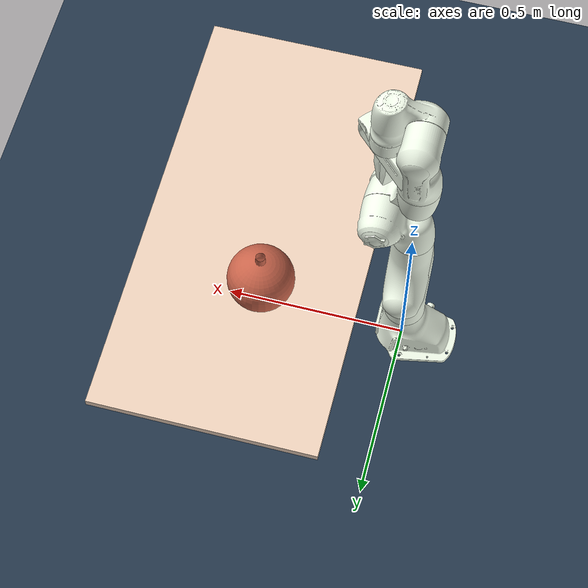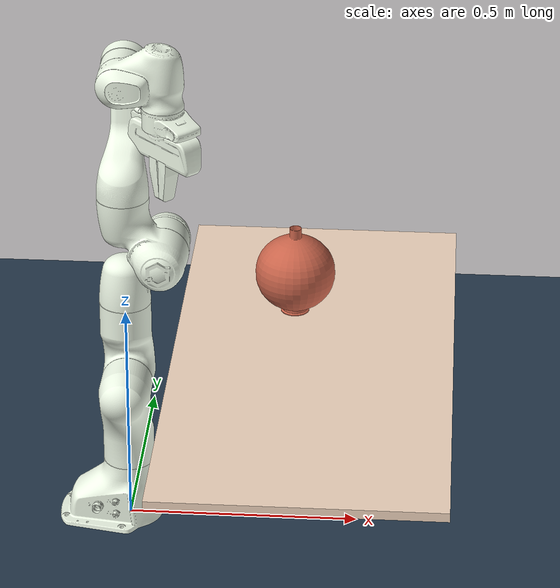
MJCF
<?xml version="1.0" ?>
<mujoco model="mujoco_panda_model">

    <include file="other/simple_scene.xml"/>
    <include file="panda/assets.xml"/>
    <compiler meshdir=""/>

    <default>
        <default class="block_visual">
          <geom contype="0" conaffinity="0"/>
        </default>
        <default class="block_collision">
          <geom contype="1" conaffinity="1" condim="4" solimp="0.99 0.99 0.01" solref="0.01 1"/>
        </default>
        <default class="bottle_visual">
          <geom contype="0" conaffinity="0" type="mesh" mass="0"/>
        </default>
        <default class="bottle_collision">
          <geom contype="1" conaffinity="1" condim="4" solimp="0.99 0.99 0.01" solref="0.01 1" type="mesh" density="1000"/>
        </default>
        <site rgba="1 0 0 .5"/>
    </default>

    <option cone="elliptic" timestep="0.001" integrator="Euler">
        <flag gravity="disable"/>
    </option>

    <worldbody>
        <include file="panda/arm_with_gripper.xml"/>
        <body name="table1" pos="0.4 0.0 0.4">
            <geom name="table1_geom" class="block_collision" size=".3 0.6 0.01" rgba="0.96 0.85 0.76 1" friction="0.2 0.005 0.0001" mass="20" type="box"/>
        </body>
        <body name="bottle" pos="0.35 0.2 0.4125">
            <geom class="bottle_visual" rgba="0.8 0.4 0.3 1" mesh="bottle0_visual"/>
            <geom class="bottle_collision" rgba="0.8 0.4 0.3 1" mesh="bottle0_collision"/>
        </body>
    </worldbody>

    <actuator>
        <include file="panda/actuators/torque_with_gripper.xml"/>
    </actuator>

    <sensor>
        <include file="panda/sensors/ft_sensor.xml" />
    </sensor>

</mujoco>

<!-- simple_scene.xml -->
<mujoco>

    <asset>
        <texture name="texplane" type="2d" builtin="checker" rgb1=".2 .3 .4" rgb2=".1 0.15 0.2"
                width="512" height="512"/>
        <material name="MatGnd" reflectance="0.5" texture="texplane" texrepeat="1 1" texuniform="true"/>
    </asset>

    <worldbody>
        <light pos="0 0 1000" castshadow="false"/>
        <geom name="ground" pos="0 0 0" size="5 5 10" material="MatGnd" type="plane" contype="1" conaffinity="1"/>
    </worldbody>
</mujoco>

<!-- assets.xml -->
<mujoco>

    <compiler angle="radian"/>

    <asset>
        <mesh name="bottle0_collision" file="meshes/collision/bottle.stl"/>
        <mesh name="bottle0_visual" file="meshes/visual/bottle.stl"/>

        <mesh name="link0_collision" file="meshes/collision/link0.stl"/>
        <mesh name="link1_collision" file="meshes/collision/link1.stl"/>
        <mesh name="link2_collision" file="meshes/collision/link2.stl"/>
        <mesh name="link3_collision" file="meshes/collision/link3.stl"/>
        <mesh name="link4_collision" file="meshes/collision/link4.stl"/>
        <mesh name="link5_collision" file="meshes/collision/link5.stl"/>
        <mesh name="link6_collision" file="meshes/collision/link6.stl"/>
        <mesh name="link7_collision" file="meshes/collision/link7.stl"/>
        <mesh name="hand_collision" file="meshes/collision/hand.stl"/>
        <mesh name="finger_collision" file="meshes/collision/finger.stl" scale='1.75 1.0 1.75'/>
        <mesh name="link0_visual" file="meshes/visual/link0.stl"/>
        <mesh name="link1_visual" file="meshes/visual/link1.stl"/>
        <mesh name="link2_visual" file="meshes/visual/link2.stl"/>
        <mesh name="link3_visual" file="meshes/visual/link3.stl"/>
        <mesh name="link4_visual" file="meshes/visual/link4.stl"/>
        <mesh name="link5_visual" file="meshes/visual/link5.stl"/>
        <mesh name="link6_visual" file="meshes/visual/link6.stl"/>
        <mesh name="link7_visual" file="meshes/visual/link7.stl"/>
        <mesh name="hand_visual" file="meshes/visual/hand.stl"/>
        <mesh name="finger_visual" file="meshes/collision/finger.stl" scale='1.75 1.0 1.75'/>
    </asset>
    <default>
        <default class="panda">

            <joint pos="0 0 0" axis="0 0 1" limited="true" damping="100"/>
            <position forcelimited="true" ctrllimited="true" user="1002 40 2001 -0.005 0.005"/>
            <default class="visual">
                <geom contype="0" conaffinity="0" group="0" type="mesh" rgba=".95 .99 .92 1" mass="0"/>
            </default>

            <default class="collision">
                <geom contype="1" conaffinity="1" group="3" type="mesh" rgba=".5 .6 .7 1"/>
            </default>
             <default class="panda_finger">
                <joint damping="100" armature='5'/>
            </default>
        </default>
    </default>
</mujoco>

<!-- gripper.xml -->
<mujoco>
<body name="panda_hand" pos="0 0 0.107" euler="0 0 -0.785">
    <inertial pos="0 0 0" euler="0 0 0" mass="0.68" diaginertia="0.1 0.1 0.1" />
    <geom class="visual" mesh="hand_visual"/>
    <geom class="collision" mesh="hand_collision"/>

    <body name="panda_leftfinger" pos="0 0 0.0584" quat="1 0 0 0">
        <joint name="panda_finger_joint1"  axis="0 1 0" type="slide" range="0 0.04" damping="100" armature='5' limited="true"/>
        <geom class="visual" mesh="finger_visual"/>
        <geom class="collision" mesh="finger_collision" mass="0.01"/>
    </body>

    <body name="panda_rightfinger" pos="0 0 0.0584" quat="1 0 0 0">
        <joint name="panda_finger_joint2" axis="0 -1 0" type="slide" range="0 0.04" damping="100" armature='5' limited="true"/>
        <geom quat="0 0 0 1" class="visual" mesh="finger_visual"/>
        <geom quat="0 0 0 1" class="collision" mesh="finger_collision" mass="0.01"/>
    </body>
</body>
</mujoco>

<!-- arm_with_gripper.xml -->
<mujoco>

    <body name="panda_link0" childclass="panda" >
        <inertial pos="0 0 0" quat="1 0 0 0" mass="3.06" diaginertia="0.3 0.3 0.3" />
        <geom class="visual" mesh="link0_visual"/>

        <body name="panda_link1" pos="0 0 0.333">
            <inertial pos="3.875e-03 2.081e-03 -0.1750" mass="4.970684" fullinertia="7.0337e-01 7.0661e-01 9.1170e-03 -1.3900e-04 6.7720e-03 1.9169e-02" />
            <joint name="panda_joint1" range="-2.8973 2.8973" frictionloss="5"/>
            <geom class="visual" mesh="link1_visual"/>
            <geom class="collision" mesh="link1_collision"/>

            <body name="panda_link2" pos="0 0 0" quat="0.707107 -0.707107 0 0">
                <inertial pos="-3.141e-03 -2.872e-02 3.495e-03" mass="0.646926" fullinertia="7.9620e-03 2.8110e-02 2.5995e-02 -3.9250e-03 1.0254e-02 7.0400e-04" />
                <joint name="panda_joint2" range="-1.7628 1.7628" frictionloss="2"/>
                <geom class="visual" mesh="link2_visual"/>
                <geom class="collision" mesh="link2_collision"/>

                <body name="panda_link3" pos="0 -0.316 0" quat="0.707107 0.707107 0 0">
                    <inertial pos="2.7518e-02 3.9252e-02 -6.6502e-02" mass="3.228604" fullinertia="3.7242e-02 3.6155e-02 1.0830e-02 -4.7610e-03 -1.1396e-02 -1.2805e-02" />
                    <joint name="panda_joint3" range="-2.8973 2.8973" frictionloss="2"/>
                    <geom class="visual" mesh="link3_visual"/>
                    <geom class="collision" mesh="link3_collision"/>

                    <body name="panda_link4" pos="0.0825 0 0" quat="0.707107 0.707107 0 0">
                        <inertial pos="-5.317e-02 1.04419e-01 2.7454e-02" mass="3.587895" fullinertia="2.5853e-02 1.9552e-02 2.8323e-02 7.7960e-03 -1.3320e-03 8.6410e-03" />
                        <joint name="panda_joint4" range="-3.0718 -0.4" frictionloss="0.5"/>
                        <geom class="visual" mesh="link4_visual"/>
                        <geom class="collision" mesh="link4_collision"/>

                        <body name="panda_link5" pos="-0.0825 0.384 0" quat="0.707107 -0.707107 0 0">
                            <inertial pos="-1.1953e-02 4.1065e-02 -3.8437e-02" mass="1.225946" fullinertia="3.5549e-02 2.9474e-02 8.6270e-03 -2.1170e-03 -4.0370e-03 2.2900e-04" />
                            <joint name="panda_joint5" range="-2.8973 2.8973" frictionloss="1"/>
                            <geom class="visual" mesh="link5_visual"/>
                            <geom class="collision" mesh="link5_collision"/>

                            <body name="panda_link6" pos="0 0 0" quat="0.707107 0.707107 0 0">
                                <inertial pos="6.0149e-02 -1.4117e-02 -1.0517e-02" mass="1.666555" fullinertia="1.9640e-03 4.3540e-03 5.4330e-03 1.0900e-04 -1.1580e-03 3.4100e-04" />
                                <joint name="panda_joint6" range="-1.6573 2.1127" frictionloss="0.5"/>
                                <geom class="visual" mesh="link6_visual"/>
                                <geom class="collision" mesh="link6_collision"/>

                                <body name="panda_link7" pos="0.088 0 0" euler='1.57 0 0.'>
                                    <inertial pos="1.0517e-02 -4.252e-03 6.1597e-02" mass="7.35522e-01" fullinertia="1.2516e-02 1.0027e-02 4.8150e-03 -4.2800e-04 -1.1960e-03 -7.4100e-04" />
                                    <joint name="panda_joint7" range="-2.8973 2.8973" frictionloss="0.5"/>
                                    <geom class="visual" mesh="link7_visual"/>
                                    <geom class="collision" mesh="link7_collision"/>

                                    <site name='ee_site' pos='0 0 0.107' size="0.005 0.005 0.005" euler='0 0 -1.57'/>
                                    <include file="panda/gripper.xml"/>
                                </body>
                            </body>
                        </body>
                    </body>
                </body>
            </body>
        </body>
    </body>
</mujoco>

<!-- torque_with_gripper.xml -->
<mujoco>
    <motor name="arm_direct_actuator_1" joint="panda_joint1" class="panda" forcerange="-87 87" ctrlrange="-87 87"/>
    <motor name="arm_direct_actuator_2" joint="panda_joint2" class="panda" forcerange="-87 87" ctrlrange="-87 87"/>
    <motor name="arm_direct_actuator_3" joint="panda_joint3" class="panda" forcerange="-87 87" ctrlrange="-87 87"/>
    <motor name="arm_direct_actuator_4" joint="panda_joint4" class="panda" forcerange="-87 87" ctrlrange="-87 87"/>
    <motor name="arm_direct_actuator_5" joint="panda_joint5" class="panda" forcerange="-12 12" ctrlrange="-12 12"/>
    <motor name="arm_direct_actuator_6" joint="panda_joint6" class="panda" forcerange="-12 12" ctrlrange="-12 12"/>
    <motor name="arm_direct_actuator_7" joint="panda_joint7" class="panda" forcerange="-12 12" ctrlrange="-12 12"/>
    <motor name="gripper_direct_actuator_1" joint="panda_finger_joint1" class="panda_finger" forcerange="-70 70" ctrlrange="-70 70"/>
    <motor name="gripper_direct_actuator_2" joint="panda_finger_joint2" class="panda_finger" forcerange="-70 70" ctrlrange="-70 70"/>
</mujoco>

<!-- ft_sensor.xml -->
<mujoco>
  <force name="ee_force_sensor" site="ee_site"/>
  <torque name="ee_torque_sensor" site="ee_site"/>
</mujoco>
